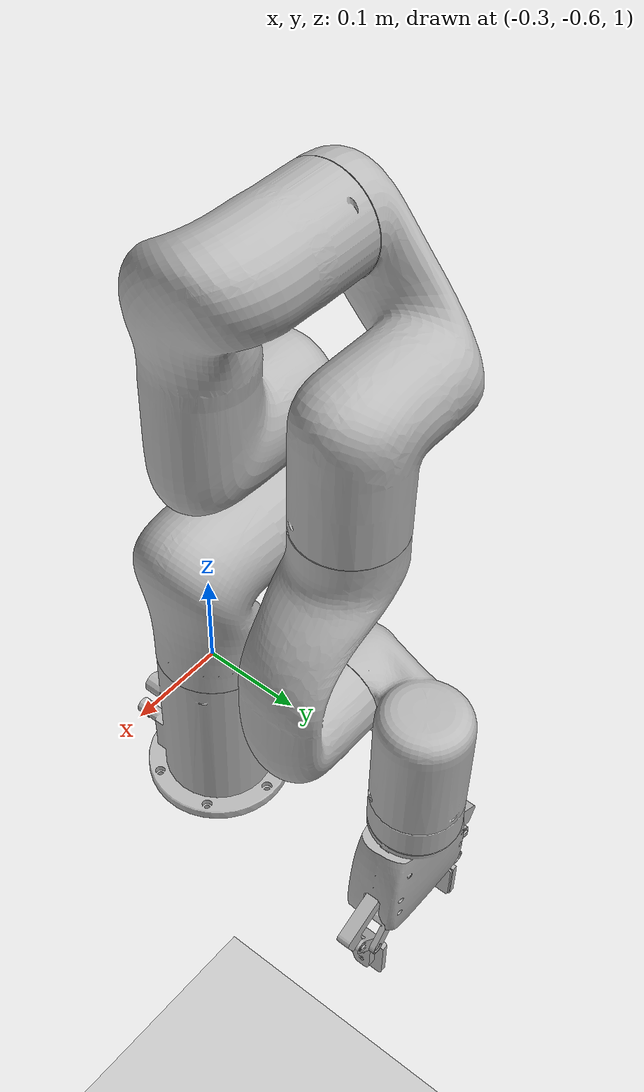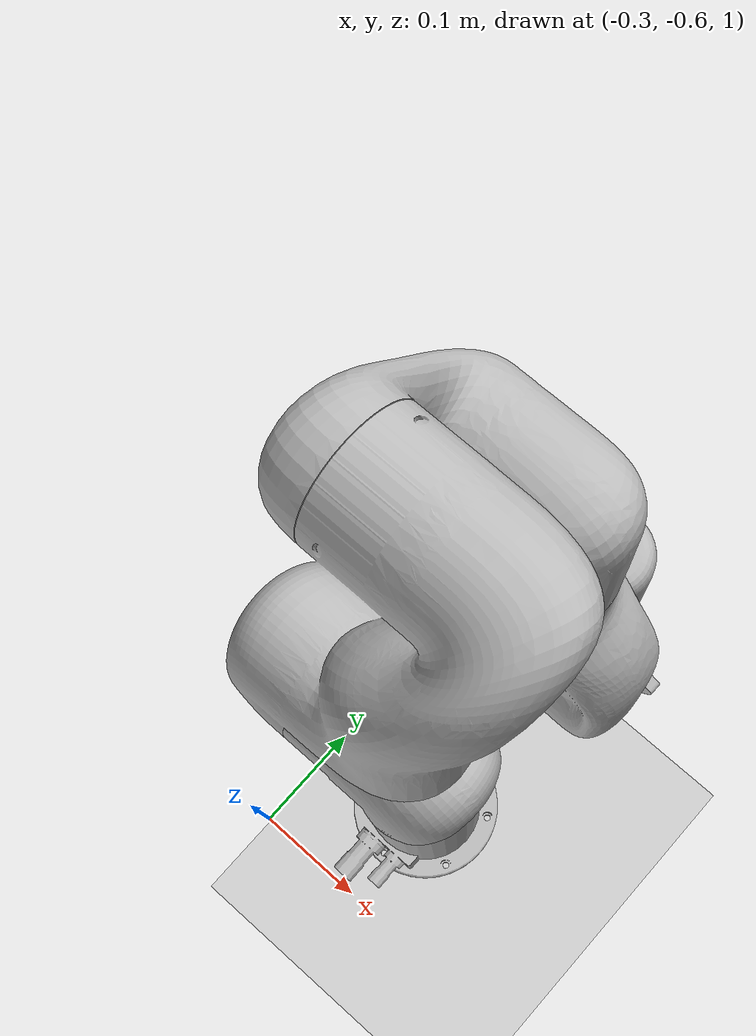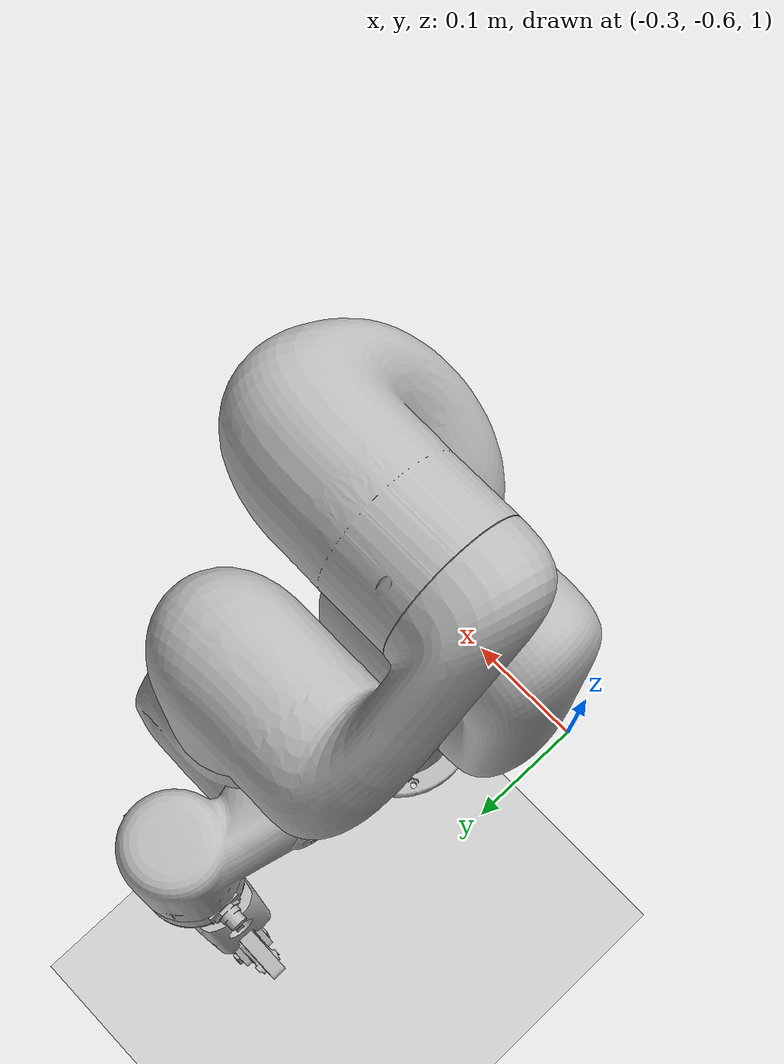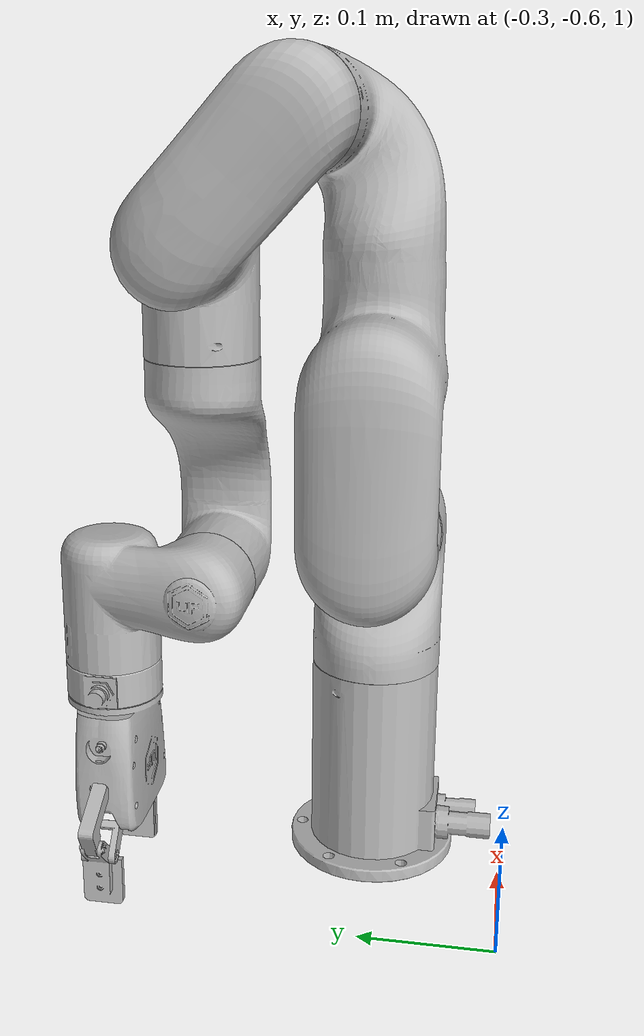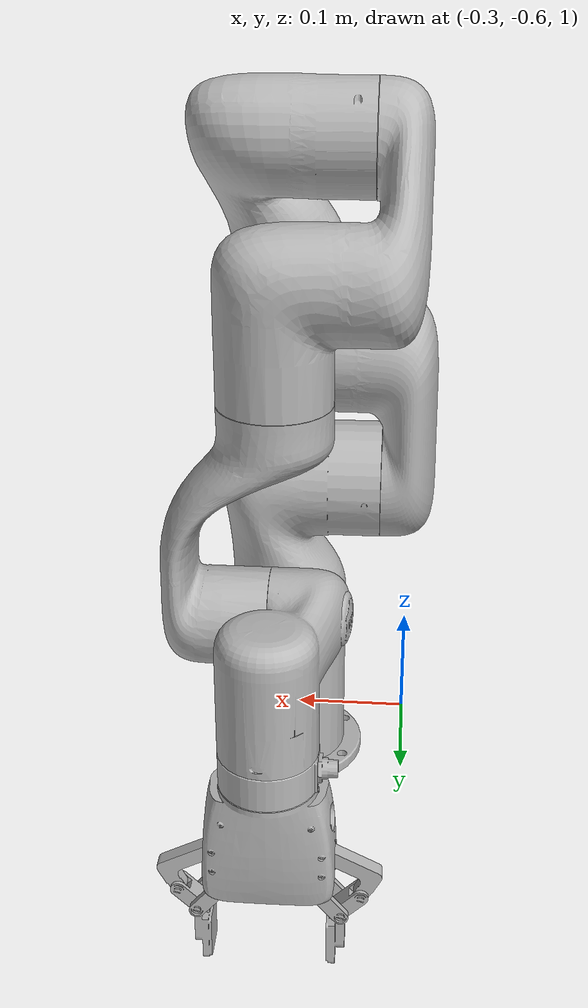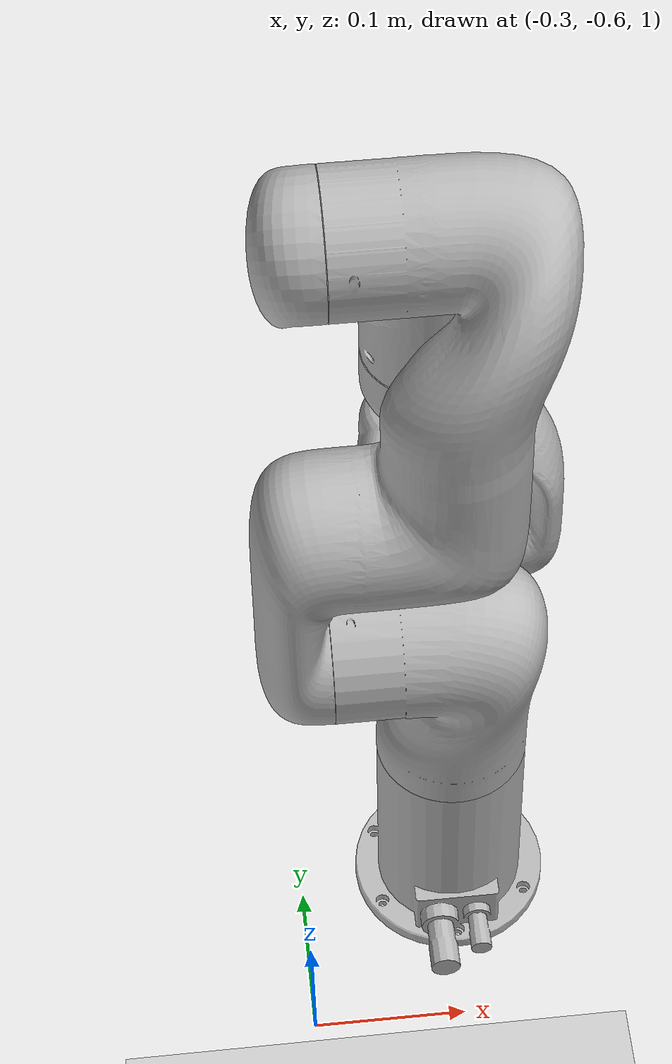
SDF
<sdf version="1.6">
 <world name="default">
  <model name="ground_plane">
   <static>1</static>
   <link name="link">
    <collision name="collision">
     <geometry><plane><normal>0 0 1</normal><size>100 100</size></plane></geometry>
     <surface>
      <contact><collide_bitmask>65535</collide_bitmask></contact>
      <friction><ode><mu>100</mu><mu2>50</mu2></ode></friction>
     </surface>
    </collision>
    <visual name="visual">
     <cast_shadows>0</cast_shadows>
     <geometry><plane><normal>0 0 1</normal><size>100 100</size></plane></geometry>
     <material>
      <script><uri>file://media/materials/scripts/gazebo.material</uri><name>Gazebo/Grey</name></script>
     </material>
    </visual>
   </link>
  </model>
  <light name="sun" type="directional">
   <pose>0 0 10 0 -0 0</pose>
   <diffuse>0.8 0.8 0.8 1</diffuse>
   <specular>0.2 0.2 0.2 1</specular>
   <attenuation>
    <range>1000</range>
    <constant>0.9</constant>
    <linear>0.01</linear>
    <quadratic>0.001</quadratic>
   </attenuation>
   <direction>-0.5 0.1 -0.9</direction>
  </light>
  <physics name="default_physics" default="0" type="ode">
   <max_step_size>0.001</max_step_size>
   <real_time_factor>1</real_time_factor>
   <real_time_update_rate>1000</real_time_update_rate>
  </physics>
  <gravity>0 0 -9.81</gravity>
  <magnetic_field>6e-06 2.3e-05 -4.2e-05</magnetic_field>
  <atmosphere type="adiabatic"/>
  <scene><ambient>0.4 0.4 0.4 1</ambient><background>0.7 0.7 0.7 1</background><shadows>1</shadows></scene>
  <audio><device>default</device></audio>
  <spherical_coordinates>
   <surface_model>EARTH_WGS84</surface_model>
   <latitude_deg>0</latitude_deg>
   <longitude_deg>0</longitude_deg>
   <elevation>0</elevation>
   <heading_deg>0</heading_deg>
  </spherical_coordinates>
  <model name="xarm6">
   <link name="link_base">
    <inertial>
     <pose>0 0 0.09103 0 -0 0</pose>
     <mass>2.7</mass>
     <inertia>
      <ixx>0.00494875</ixx>
      <ixy>-3.5e-06</ixy>
      <ixz>1.25e-05</ixz>
      <iyy>0.00494174</iyy>
      <iyz>1.67e-06</iyz>
      <izz>0.002219</izz>
     </inertia>
    </inertial>
    <collision name="link_base_collision">
     <geometry>
      <mesh>
       <scale>1 1 1</scale>
       <uri>/home/mcr2/Desktop/gitManCourseFeb2022/ManipulatorsFeb2022/test_arm/src/xarm_ros/xarm_description/meshes/xarm6/visual/base.stl</uri>
      </mesh>
     </geometry>
    </collision>
    <visual name="link_base_visual">
     <geometry>
      <mesh>
       <scale>1 1 1</scale>
       <uri>/home/mcr2/Desktop/gitManCourseFeb2022/ManipulatorsFeb2022/test_arm/src/xarm_ros/xarm_description/meshes/xarm6/visual/base.stl</uri>
      </mesh>
     </geometry>
     <material><script><uri>__default__</uri><name>__default__</name></script></material>
    </visual>
    <self_collide>1</self_collide>
   </link>
   <joint name="world_joint" type="fixed"><child>link_base</child><parent>world</parent></joint>
   <link name="link1">
    <pose>0 0 0.267 0 -0 0</pose>
    <inertial>
     <pose>-0.002 0.02692 -0.01332 0 -0 0</pose>
     <mass>2.16</mass>
     <inertia>
      <ixx>0.00539427</ixx>
      <ixy>1.095e-05</ixy>
      <ixz>1.635e-06</ixz>
      <iyy>0.0048979</iyy>
      <iyz>0.000793</iyz>
      <izz>0.00311573</izz>
     </inertia>
    </inertial>
    <collision name="link1_collision">
     <geometry>
      <mesh>
       <scale>1 1 1</scale>
       <uri>/home/mcr2/Desktop/gitManCourseFeb2022/ManipulatorsFeb2022/test_arm/src/xarm_ros/xarm_description/meshes/xarm6/visual/link1.stl</uri>
      </mesh>
     </geometry>
    </collision>
    <visual name="link1_visual">
     <geometry>
      <mesh>
       <scale>1 1 1</scale>
       <uri>/home/mcr2/Desktop/gitManCourseFeb2022/ManipulatorsFeb2022/test_arm/src/xarm_ros/xarm_description/meshes/xarm6/visual/link1.stl</uri>
      </mesh>
     </geometry>
     <material><script><uri>__default__</uri><name>__default__</name></script></material>
    </visual>
    <self_collide>1</self_collide>
   </link>
   <joint name="joint1" type="revolute">
    <child>link1</child>
    <parent>link_base</parent>
    <axis>
     <xyz>0 0 1</xyz>
     <limit><lower>-6.28319</lower><upper>6.28319</upper><effort>50</effort><velocity>3.14</velocity></limit>
     <dynamics>
      <damping>1</damping>
      <friction>1</friction>
      <spring_reference>0</spring_reference>
      <spring_stiffness>0</spring_stiffness>
     </dynamics>
     <use_parent_model_frame>1</use_parent_model_frame>
    </axis>
   </joint>
   <link name="link2">
    <pose>0 0 0.267 -1.5708 0 0</pose>
    <inertial>
     <pose>0.03531 -0.21398 0.03386 0 -0 0</pose>
     <mass>1.71</mass>
     <inertia>
      <ixx>0.0248674</ixx>
      <ixy>-0.00430651</ixy>
      <ixz>-0.00067797</ixz>
      <iyy>0.00485548</iyy>
      <iyz>0.00457245</iyz>
      <izz>0.0238783</izz>
     </inertia>
    </inertial>
    <collision name="link2_collision">
     <geometry>
      <mesh>
       <scale>1 1 1</scale>
       <uri>/home/mcr2/Desktop/gitManCourseFeb2022/ManipulatorsFeb2022/test_arm/src/xarm_ros/xarm_description/meshes/xarm6/visual/link2.stl</uri>
      </mesh>
     </geometry>
    </collision>
    <visual name="link2_visual">
     <geometry>
      <mesh>
       <scale>1 1 1</scale>
       <uri>/home/mcr2/Desktop/gitManCourseFeb2022/ManipulatorsFeb2022/test_arm/src/xarm_ros/xarm_description/meshes/xarm6/visual/link2.stl</uri>
      </mesh>
     </geometry>
     <material><script><uri>__default__</uri><name>__default__</name></script></material>
    </visual>
    <self_collide>1</self_collide>
   </link>
   <joint name="joint2" type="revolute">
    <child>link2</child>
    <parent>link1</parent>
    <axis>
     <xyz>0 1 -4e-06</xyz>
     <limit><lower>-2.059</lower><upper>2.0944</upper><effort>50</effort><velocity>3.14</velocity></limit>
     <dynamics>
      <damping>1</damping>
      <friction>1</friction>
      <spring_reference>0</spring_reference>
      <spring_stiffness>0</spring_stiffness>
     </dynamics>
     <use_parent_model_frame>1</use_parent_model_frame>
    </axis>
   </joint>
   <link name="link3">
    <pose>0.0535 1e-06 0.5515 -1.5708 0 0</pose>
    <inertial>
     <pose>0.06781 0.10749 0.01457 0 -0 0</pose>
     <mass>1.384</mass>
     <inertia>
      <ixx>0.0053694</ixx>
      <ixy>0.0014185</ixy>
      <ixz>-0.00092094</ixz>
      <iyy>0.0032423</iyy>
      <iyz>-0.00169178</iyz>
      <izz>0.00501731</izz>
     </inertia>
    </inertial>
    <collision name="link3_collision">
     <geometry>
      <mesh>
       <scale>1 1 1</scale>
       <uri>/home/mcr2/Desktop/gitManCourseFeb2022/ManipulatorsFeb2022/test_arm/src/xarm_ros/xarm_description/meshes/xarm6/visual/link3.stl</uri>
      </mesh>
     </geometry>
    </collision>
    <visual name="link3_visual">
     <geometry>
      <mesh>
       <scale>1 1 1</scale>
       <uri>/home/mcr2/Desktop/gitManCourseFeb2022/ManipulatorsFeb2022/test_arm/src/xarm_ros/xarm_description/meshes/xarm6/visual/link3.stl</uri>
      </mesh>
     </geometry>
     <material><script><uri>__default__</uri><name>__default__</name></script></material>
    </visual>
    <self_collide>1</self_collide>
   </link>
   <joint name="joint3" type="revolute">
    <child>link3</child>
    <parent>link2</parent>
    <axis>
     <xyz>0 1 -4e-06</xyz>
     <limit><lower>-3.927</lower><upper>0.19198</upper><effort>32</effort><velocity>3.14</velocity></limit>
     <dynamics>
      <damping>1</damping>
      <friction>1</friction>
      <spring_reference>0</spring_reference>
      <spring_stiffness>0</spring_stiffness>
     </dynamics>
     <use_parent_model_frame>1</use_parent_model_frame>
    </axis>
   </joint>
   <link name="link4">
    <pose>0.131 -0 0.209 3.14159 -0 0</pose>
    <inertial>
     <pose>-0.00021 0.02578 -0.02538 0 -0 0</pose>
     <mass>1.115</mass>
     <inertia>
      <ixx>0.00439263</ixx>
      <ixy>5.028e-05</ixy>
      <ixz>1.374e-05</ixz>
      <iyy>0.0040077</iyy>
      <iyz>0.00045338</iyz>
      <izz>0.00110321</izz>
     </inertia>
    </inertial>
    <collision name="link4_collision">
     <geometry>
      <mesh>
       <scale>1 1 1</scale>
       <uri>/home/mcr2/Desktop/gitManCourseFeb2022/ManipulatorsFeb2022/test_arm/src/xarm_ros/xarm_description/meshes/xarm6/visual/link4.stl</uri>
      </mesh>
     </geometry>
    </collision>
    <visual name="link4_visual">
     <geometry>
      <mesh>
       <scale>1 1 1</scale>
       <uri>/home/mcr2/Desktop/gitManCourseFeb2022/ManipulatorsFeb2022/test_arm/src/xarm_ros/xarm_description/meshes/xarm6/visual/link4.stl</uri>
      </mesh>
     </geometry>
     <material><script><uri>__default__</uri><name>__default__</name></script></material>
    </visual>
    <self_collide>1</self_collide>
   </link>
   <joint name="joint4" type="revolute">
    <child>link4</child>
    <parent>link3</parent>
    <axis>
     <xyz>-0 -7e-06 -1</xyz>
     <limit><lower>-6.28319</lower><upper>6.28319</upper><effort>32</effort><velocity>3.14</velocity></limit>
     <dynamics>
      <damping>1</damping>
      <friction>1</friction>
      <spring_reference>0</spring_reference>
      <spring_stiffness>0</spring_stiffness>
     </dynamics>
     <use_parent_model_frame>1</use_parent_model_frame>
    </axis>
   </joint>
   <link name="link5">
    <pose>0.131 -0 0.209 -1.5708 0 0</pose>
    <inertial>
     <pose>0.05428 0.01781 0.00543 0 -0 0</pose>
     <mass>1.275</mass>
     <inertia>
      <ixx>0.00120276</ixx>
      <ixy>0.000492428</ixy>
      <ixz>-0.00039147</ixz>
      <iyy>0.0022876</iyy>
      <iyz>-0.0001235</iyz>
      <izz>0.0026866</izz>
     </inertia>
    </inertial>
    <collision name="link5_collision">
     <geometry>
      <mesh>
       <scale>1 1 1</scale>
       <uri>/home/mcr2/Desktop/gitManCourseFeb2022/ManipulatorsFeb2022/test_arm/src/xarm_ros/xarm_description/meshes/xarm6/visual/link5.stl</uri>
      </mesh>
     </geometry>
    </collision>
    <visual name="link5_visual">
     <geometry>
      <mesh>
       <scale>1 1 1</scale>
       <uri>/home/mcr2/Desktop/gitManCourseFeb2022/ManipulatorsFeb2022/test_arm/src/xarm_ros/xarm_description/meshes/xarm6/visual/link5.stl</uri>
      </mesh>
     </geometry>
     <material><script><uri>__default__</uri><name>__default__</name></script></material>
    </visual>
    <self_collide>1</self_collide>
   </link>
   <joint name="joint5" type="revolute">
    <child>link5</child>
    <parent>link4</parent>
    <axis>
     <xyz>0 1 -4e-06</xyz>
     <limit><lower>-1.69297</lower><upper>3.14159</upper><effort>32</effort><velocity>3.14</velocity></limit>
     <dynamics>
      <damping>1</damping>
      <friction>1</friction>
      <spring_reference>0</spring_reference>
      <spring_stiffness>0</spring_stiffness>
     </dynamics>
     <use_parent_model_frame>1</use_parent_model_frame>
    </axis>
   </joint>
   <link name="link6">
    <pose>0.207 -1e-06 0.112 3.14159 -0 0</pose>
    <inertial>
     <pose>-0.000545 -0.001431 0.038342 0 -0 0</pose>
     <mass>0.65116</mass>
     <inertia>
      <ixx>0.000818795</ixx>
      <ixy>2.44297e-07</ixy>
      <ixz>6.08903e-06</ixz>
      <iyy>0.000680747</iyy>
      <iyz>2.08511e-06</iyz>
      <izz>0.000336739</izz>
     </inertia>
    </inertial>
    <collision name="link6_collision">
     <geometry>
      <mesh>
       <scale>1 1 1</scale>
       <uri>/home/mcr2/Desktop/gitManCourseFeb2022/ManipulatorsFeb2022/test_arm/src/xarm_ros/xarm_description/meshes/collision/end_tool.STL</uri>
      </mesh>
     </geometry>
    </collision>
    <collision name="link6_fixed_joint_lump__xarm_gripper_base_link_collision_1">
     <geometry>
      <mesh>
       <scale>1 1 1</scale>
       <uri>/home/mcr2/Desktop/gitManCourseFeb2022/ManipulatorsFeb2022/test_arm/src/xarm_ros/xarm_gripper/meshes/base_link_collision.STL</uri>
      </mesh>
     </geometry>
    </collision>
    <visual name="link6_visual">
     <geometry>
      <mesh>
       <scale>1 1 1</scale>
       <uri>/home/mcr2/Desktop/gitManCourseFeb2022/ManipulatorsFeb2022/test_arm/src/xarm_ros/xarm_description/meshes/xarm6/visual/link6.stl</uri>
      </mesh>
     </geometry>
     <material><script><uri>__default__</uri><name>__default__</name></script></material>
    </visual>
    <visual name="link6_fixed_joint_lump__xarm_gripper_base_link_visual_1">
     <geometry>
      <mesh>
       <scale>1 1 1</scale>
       <uri>/home/mcr2/Desktop/gitManCourseFeb2022/ManipulatorsFeb2022/test_arm/src/xarm_ros/xarm_gripper/meshes/base_link.STL</uri>
      </mesh>
     </geometry>
     <material><script><uri>__default__</uri><name>__default__</name></script></material>
    </visual>
   </link>
   <joint name="joint6" type="revolute">
    <child>link6</child>
    <parent>link5</parent>
    <axis>
     <xyz>-0 -7e-06 -1</xyz>
     <limit><lower>-6.28319</lower><upper>6.28319</upper><effort>20</effort><velocity>3.14</velocity></limit>
     <dynamics>
      <damping>1</damping>
      <friction>1</friction>
      <spring_reference>0</spring_reference>
      <spring_stiffness>0</spring_stiffness>
     </dynamics>
     <use_parent_model_frame>1</use_parent_model_frame>
    </axis>
   </joint>
   <link name="left_outer_knuckle">
    <pose>0.207 -0.035001 0.052902 3.14159 -0 0</pose>
    <inertial>
     <pose>0 0.021559 0.015181 0 -0 0</pose>
     <mass>0.033618</mass>
     <inertia>
      <ixx>1.9111e-05</ixx>
      <ixy>-1.8803e-17</ixy>
      <ixz>-1.1002e-17</ixz>
      <iyy>6.6256e-06</iyy>
      <iyz>-7.3008e-06</iyz>
      <izz>1.3185e-05</izz>
     </inertia>
    </inertial>
    <collision name="left_outer_knuckle_collision">
     <geometry>
      <mesh>
       <scale>1 1 1</scale>
       <uri>/home/mcr2/Desktop/gitManCourseFeb2022/ManipulatorsFeb2022/test_arm/src/xarm_ros/xarm_gripper/meshes/left_outer_knuckle.STL</uri>
      </mesh>
     </geometry>
    </collision>
    <visual name="left_outer_knuckle_visual">
     <geometry>
      <mesh>
       <scale>1 1 1</scale>
       <uri>/home/mcr2/Desktop/gitManCourseFeb2022/ManipulatorsFeb2022/test_arm/src/xarm_ros/xarm_gripper/meshes/left_outer_knuckle.STL</uri>
      </mesh>
     </geometry>
     <material><script><uri>__default__</uri><name>__default__</name></script></material>
    </visual>
   </link>
   <joint name="drive_joint" type="revolute">
    <child>left_outer_knuckle</child>
    <parent>link6</parent>
    <axis>
     <xyz>1 -0 0</xyz>
     <limit><lower>0</lower><upper>0.85</upper><effort>50</effort><velocity>2</velocity></limit>
     <dynamics><spring_reference>0</spring_reference><spring_stiffness>0</spring_stiffness></dynamics>
     <use_parent_model_frame>1</use_parent_model_frame>
    </axis>
   </joint>
   <link name="left_finger">
    <pose>0.207 -0.070466 0.010864 3.14159 -0 0</pose>
    <inertial>
     <pose>-0 -0.016413 0.029258 0 -0 0</pose>
     <mass>0.048304</mass>
     <inertia>
      <ixx>1.7493e-05</ixx>
      <ixy>-4.2156e-19</ixy>
      <ixz>6.9164e-18</ixz>
      <iyy>1.7225e-05</iyy>
      <iyz>4.6433e-06</iyz>
      <izz>5.1466e-06</izz>
     </inertia>
    </inertial>
    <collision name="left_finger_collision">
     <geometry>
      <mesh>
       <scale>1 1 1</scale>
       <uri>/home/mcr2/Desktop/gitManCourseFeb2022/ManipulatorsFeb2022/test_arm/src/xarm_ros/xarm_gripper/meshes/left_finger.STL</uri>
      </mesh>
     </geometry>
    </collision>
    <visual name="left_finger_visual">
     <geometry>
      <mesh>
       <scale>1 1 1</scale>
       <uri>/home/mcr2/Desktop/gitManCourseFeb2022/ManipulatorsFeb2022/test_arm/src/xarm_ros/xarm_gripper/meshes/left_finger.STL</uri>
      </mesh>
     </geometry>
     <material><script><uri>__default__</uri><name>__default__</name></script></material>
    </visual>
   </link>
   <joint name="left_finger_joint" type="revolute">
    <child>left_finger</child>
    <parent>left_outer_knuckle</parent>
    <axis>
     <xyz>-1 0 0</xyz>
     <limit><lower>0</lower><upper>0.85</upper><effort>50</effort><velocity>2</velocity></limit>
     <dynamics><spring_reference>0</spring_reference><spring_stiffness>0</spring_stiffness></dynamics>
     <use_parent_model_frame>1</use_parent_model_frame>
    </axis>
   </joint>
   <link name="left_inner_knuckle">
    <pose>0.207 -0.020001 0.037902 3.14159 -0 0</pose>
    <inertial>
     <pose>2e-06 0.022047 0.026134 0 -0 0</pose>
     <mass>0.0230126</mass>
     <inertia>
      <ixx>6.0949e-06</ixx>
      <ixy>6.06651e-11</ixy>
      <ixz>7.19103e-11</ixz>
      <iyy>6.01955e-06</iyy>
      <iyz>-2.75317e-06</iyz>
      <izz>5.07862e-06</izz>
     </inertia>
    </inertial>
    <collision name="left_inner_knuckle_collision">
     <geometry>
      <mesh>
       <scale>1 1 1</scale>
       <uri>/home/mcr2/Desktop/gitManCourseFeb2022/ManipulatorsFeb2022/test_arm/src/xarm_ros/xarm_gripper/meshes/left_inner_knuckle.STL</uri>
      </mesh>
     </geometry>
    </collision>
    <visual name="left_inner_knuckle_visual">
     <geometry>
      <mesh>
       <scale>1 1 1</scale>
       <uri>/home/mcr2/Desktop/gitManCourseFeb2022/ManipulatorsFeb2022/test_arm/src/xarm_ros/xarm_gripper/meshes/left_inner_knuckle.STL</uri>
      </mesh>
     </geometry>
     <material><script><uri>__default__</uri><name>__default__</name></script></material>
    </visual>
   </link>
   <joint name="left_inner_knuckle_joint" type="revolute">
    <child>left_inner_knuckle</child>
    <parent>link6</parent>
    <axis>
     <xyz>1 -0 0</xyz>
     <limit><lower>0</lower><upper>0.85</upper><effort>50</effort><velocity>2</velocity></limit>
     <dynamics><spring_reference>0</spring_reference><spring_stiffness>0</spring_stiffness></dynamics>
     <use_parent_model_frame>1</use_parent_model_frame>
    </axis>
   </joint>
   <link name="right_inner_knuckle">
    <pose>0.207 0.019999 0.037902 3.14159 -0 0</pose>
    <inertial>
     <pose>2e-06 -0.022047 0.026133 0 -0 0</pose>
     <mass>0.023013</mass>
     <inertia>
      <ixx>6.0949e-06</ixx>
      <ixy>-6.0665e-11</ixy>
      <ixz>7.191e-11</ixz>
      <iyy>6.0197e-06</iyy>
      <iyz>2.7531e-06</iyz>
      <izz>5.0784e-06</izz>
     </inertia>
    </inertial>
    <collision name="right_inner_knuckle_collision">
     <geometry>
      <mesh>
       <scale>1 1 1</scale>
       <uri>/home/mcr2/Desktop/gitManCourseFeb2022/ManipulatorsFeb2022/test_arm/src/xarm_ros/xarm_gripper/meshes/right_inner_knuckle.STL</uri>
      </mesh>
     </geometry>
    </collision>
    <visual name="right_inner_knuckle_visual">
     <geometry>
      <mesh>
       <scale>1 1 1</scale>
       <uri>/home/mcr2/Desktop/gitManCourseFeb2022/ManipulatorsFeb2022/test_arm/src/xarm_ros/xarm_gripper/meshes/right_inner_knuckle.STL</uri>
      </mesh>
     </geometry>
     <material><script><uri>__default__</uri><name>__default__</name></script></material>
    </visual>
   </link>
   <joint name="right_inner_knuckle_joint" type="revolute">
    <child>right_inner_knuckle</child>
    <parent>link6</parent>
    <axis>
     <xyz>-1 0 0</xyz>
     <limit><lower>0</lower><upper>0.85</upper><effort>50</effort><velocity>2</velocity></limit>
     <dynamics><spring_reference>0</spring_reference><spring_stiffness>0</spring_stiffness></dynamics>
     <use_parent_model_frame>1</use_parent_model_frame>
    </axis>
   </joint>
   <link name="right_outer_knuckle">
    <pose>0.207 0.034999 0.052902 3.14159 -0 0</pose>
    <inertial>
     <pose>-0 -0.021559 0.015181 0 -0 0</pose>
     <mass>0.033618</mass>
     <inertia>
      <ixx>1.9111e-05</ixx>
      <ixy>-1.8789e-17</ixy>
      <ixz>1.0986e-17</ixz>
      <iyy>6.6256e-06</iyy>
      <iyz>7.3008e-06</iyz>
      <izz>1.3185e-05</izz>
     </inertia>
    </inertial>
    <collision name="right_outer_knuckle_collision">
     <geometry>
      <mesh>
       <scale>1 1 1</scale>
       <uri>/home/mcr2/Desktop/gitManCourseFeb2022/ManipulatorsFeb2022/test_arm/src/xarm_ros/xarm_gripper/meshes/right_outer_knuckle.STL</uri>
      </mesh>
     </geometry>
    </collision>
    <visual name="right_outer_knuckle_visual">
     <geometry>
      <mesh>
       <scale>1 1 1</scale>
       <uri>/home/mcr2/Desktop/gitManCourseFeb2022/ManipulatorsFeb2022/test_arm/src/xarm_ros/xarm_gripper/meshes/right_outer_knuckle.STL</uri>
      </mesh>
     </geometry>
     <material><script><uri>__default__</uri><name>__default__</name></script></material>
    </visual>
   </link>
   <joint name="right_outer_knuckle_joint" type="revolute">
    <child>right_outer_knuckle</child>
    <parent>link6</parent>
    <axis>
     <xyz>-1 0 0</xyz>
     <limit><lower>0</lower><upper>0.85</upper><effort>50</effort><velocity>2</velocity></limit>
     <dynamics><spring_reference>0</spring_reference><spring_stiffness>0</spring_stiffness></dynamics>
     <use_parent_model_frame>1</use_parent_model_frame>
    </axis>
   </joint>
   <link name="right_finger">
    <pose>0.207 0.070464 0.010863 3.14159 -0 0</pose>
    <inertial>
     <pose>0 0.016413 0.029258 0 -0 0</pose>
     <mass>0.048304</mass>
     <inertia>
      <ixx>1.7493e-05</ixx>
      <ixy>-5.0014e-19</ixy>
      <ixz>-7.5079e-18</ixz>
      <iyy>1.7225e-05</iyy>
      <iyz>-4.6435e-06</iyz>
      <izz>5.1466e-06</izz>
     </inertia>
    </inertial>
    <collision name="right_finger_collision">
     <geometry>
      <mesh>
       <scale>1 1 1</scale>
       <uri>/home/mcr2/Desktop/gitManCourseFeb2022/ManipulatorsFeb2022/test_arm/src/xarm_ros/xarm_gripper/meshes/right_finger.STL</uri>
      </mesh>
     </geometry>
    </collision>
    <visual name="right_finger_visual">
     <geometry>
      <mesh>
       <scale>1 1 1</scale>
       <uri>/home/mcr2/Desktop/gitManCourseFeb2022/ManipulatorsFeb2022/test_arm/src/xarm_ros/xarm_gripper/meshes/right_finger.STL</uri>
      </mesh>
     </geometry>
     <material><script><uri>__default__</uri><name>__default__</name></script></material>
    </visual>
   </link>
   <joint name="right_finger_joint" type="revolute">
    <child>right_finger</child>
    <parent>right_outer_knuckle</parent>
    <axis>
     <xyz>1 -0 0</xyz>
     <limit><lower>0</lower><upper>0.85</upper><effort>50</effort><velocity>2</velocity></limit>
     <dynamics><spring_reference>0</spring_reference><spring_stiffness>0</spring_stiffness></dynamics>
     <use_parent_model_frame>1</use_parent_model_frame>
    </axis>
   </joint>
   <plugin name="gazebo_ros_control" filename="libgazebo_ros_control.so">
    <robotNamespace>/xarm</robotNamespace>
    <robotSimType>gazebo_ros_control/DefaultRobotHWSim</robotSimType>
    <legacyModeNS>1</legacyModeNS>
   </plugin>
   <plugin name="gazebo_grasp_fix" filename="libgazebo_grasp_fix.so">
    <arm>
     <arm_name>xarm_gripper</arm_name>
     <palm_link>link6</palm_link>
     <gripper_link>left_inner_knuckle</gripper_link>
     <gripper_link>right_inner_knuckle</gripper_link>
     <gripper_link>left_finger</gripper_link>
     <gripper_link>right_finger</gripper_link>
    </arm>
    <forces_angle_tolerance>100</forces_angle_tolerance>
    <update_rate>10</update_rate>
    <grip_count_threshold>2</grip_count_threshold>
    <max_grip_count>3</max_grip_count>
    <release_tolerance>0.0198</release_tolerance>
    <disable_collisions_on_attach>0</disable_collisions_on_attach>
    <contact_topic>__default_topic__</contact_topic>
    <robotNamespace>/</robotNamespace>
   </plugin>
   <plugin name="left_finger_jointmimic_joint_plugin" filename="libroboticsgroup_upatras_gazebo_mimic_joint_plugin.so">
    <joint>drive_joint</joint>
    <mimicJoint>left_finger_joint</mimicJoint>
    <multiplier>1.0</multiplier>
    <offset>0</offset>
    <sensitiveness>0.0</sensitiveness>
    <maxEffort>10.0</maxEffort>
    <robotNamespace>/</robotNamespace>
   </plugin>
   <plugin name="left_inner_knuckle_jointmimic_joint_plugin" filename="libroboticsgroup_upatras_gazebo_mimic_joint_plugin.so">
    <joint>drive_joint</joint>
    <mimicJoint>left_inner_knuckle_joint</mimicJoint>
    <multiplier>1.0</multiplier>
    <offset>0</offset>
    <sensitiveness>0.0</sensitiveness>
    <maxEffort>10.0</maxEffort>
    <robotNamespace>/</robotNamespace>
   </plugin>
   <plugin name="right_outer_knuckle_jointmimic_joint_plugin" filename="libroboticsgroup_upatras_gazebo_mimic_joint_plugin.so">
    <joint>drive_joint</joint>
    <mimicJoint>right_outer_knuckle_joint</mimicJoint>
    <multiplier>1.0</multiplier>
    <offset>0</offset>
    <sensitiveness>0.0</sensitiveness>
    <maxEffort>10.0</maxEffort>
    <robotNamespace>/</robotNamespace>
   </plugin>
   <plugin name="right_finger_jointmimic_joint_plugin" filename="libroboticsgroup_upatras_gazebo_mimic_joint_plugin.so">
    <joint>drive_joint</joint>
    <mimicJoint>right_finger_joint</mimicJoint>
    <multiplier>1.0</multiplier>
    <offset>0</offset>
    <sensitiveness>0.0</sensitiveness>
    <maxEffort>10.0</maxEffort>
    <robotNamespace>/</robotNamespace>
   </plugin>
   <static>0</static>
   <plugin name="right_inner_knuckle_jointmimic_joint_plugin" filename="libroboticsgroup_upatras_gazebo_mimic_joint_plugin.so">
    <joint>drive_joint</joint>
    <mimicJoint>right_inner_knuckle_joint</mimicJoint>
    <multiplier>1.0</multiplier>
    <offset>0</offset>
    <sensitiveness>0.0</sensitiveness>
    <maxEffort>10.0</maxEffort>
    <robotNamespace>/</robotNamespace>
   </plugin>
   <pose>-0.199999 -0.499998 1.021 -6e-06 -2.1e-05 1.571</pose>
  </model>
 </world>
</sdf>
